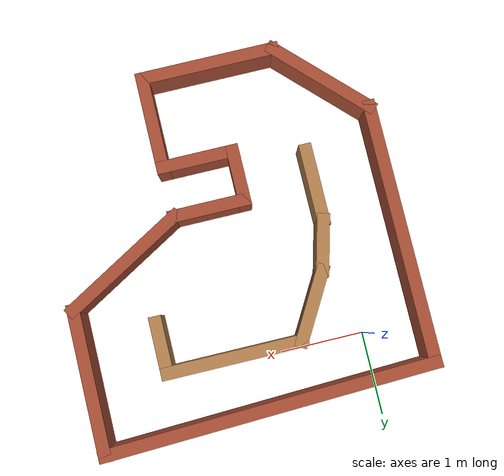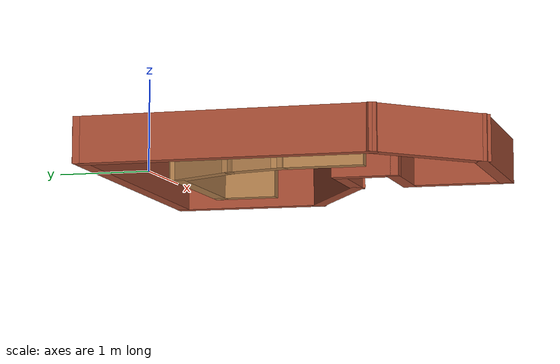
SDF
<?xml version='1.0'?>
<sdf version='1.7'>
  <model name='custom_world2'>
    <pose>1.28842 -1.45908 0 0 -0 0</pose>
    <link name='Wall_0'>
      <collision name='Wall_0_Collision'>
        <geometry>
          <box>
            <size>3.25 0.15 0.5</size>
          </box>
        </geometry>
        <pose>0 0 0.25 0 -0 0</pose>
      </collision>
      <visual name='Wall_0_Visual'>
        <pose>0 0 0.25 0 -0 0</pose>
        <geometry>
          <box>
            <size>3.25 0.15 0.5</size>
          </box>
        </geometry>
        <material>
          <script>
            <uri>file://media/materials/scripts/gazebo.material</uri>
            <name>Gazebo/Bricks</name>
          </script>
          <ambient>1 1 1 1</ambient>
        </material>
        <meta>
          <layer>0</layer>
        </meta>
      </visual>
      <pose>-1.96842 0.419076 0 0 -0 1.5708</pose>
    </link>
    <link name='Wall_12'>
      <collision name='Wall_12_Collision'>
        <geometry>
          <box>
            <size>4.09292 0.15 0.5</size>
          </box>
        </geometry>
        <pose>0 0 0.25 0 -0 0</pose>
      </collision>
      <visual name='Wall_12_Visual'>
        <pose>0 0 0.25 0 -0 0</pose>
        <geometry>
          <box>
            <size>4.09292 0.15 0.5</size>
          </box>
        </geometry>
        <material>
          <script>
            <uri>file://media/materials/scripts/gazebo.material</uri>
            <name>Gazebo/Bricks</name>
          </script>
          <ambient>1 1 1 1</ambient>
        </material>
        <meta>
          <layer>0</layer>
        </meta>
      </visual>
      <pose>0.001583 2.04157 0 0 -0 -3.10481</pose>
    </link>
    <link name='Wall_14'>
      <collision name='Wall_14_Collision'>
        <geometry>
          <box>
            <size>1.85 0.15 0.5</size>
          </box>
        </geometry>
        <pose>0 0 0.25 0 -0 0</pose>
      </collision>
      <visual name='Wall_14_Visual'>
        <pose>0 0 0.25 0 -0 0</pose>
        <geometry>
          <box>
            <size>1.85 0.15 0.5</size>
          </box>
        </geometry>
        <material>
          <script>
            <uri>file://media/materials/scripts/gazebo.material</uri>
            <name>Gazebo/Bricks</name>
          </script>
          <ambient>1 1 1 1</ambient>
        </material>
        <meta>
          <layer>0</layer>
        </meta>
      </visual>
      <pose>1.97158 1.26408 0 0 -0 -1.5708</pose>
    </link>
    <link name='Wall_16'>
      <collision name='Wall_16_Collision'>
        <geometry>
          <box>
            <size>0.75 0.15 0.5</size>
          </box>
        </geometry>
        <pose>0 0 0.25 0 -0 0</pose>
      </collision>
      <visual name='Wall_16_Visual'>
        <pose>0 0 0.25 0 -0 0</pose>
        <geometry>
          <box>
            <size>0.75 0.15 0.5</size>
          </box>
        </geometry>
        <material>
          <script>
            <uri>file://media/materials/scripts/gazebo.material</uri>
            <name>Gazebo/Wood</name>
          </script>
          <ambient>1 1 1 1</ambient>
        </material>
        <meta>
          <layer>0</layer>
        </meta>
      </visual>
      <pose>1.07058 1.07308 0 0 -0 1.5708</pose>
    </link>
    <link name='Wall_17'>
      <collision name='Wall_17_Collision'>
        <geometry>
          <box>
            <size>1.75 0.15 0.5</size>
          </box>
        </geometry>
        <pose>0 0 0.25 0 -0 0</pose>
      </collision>
      <visual name='Wall_17_Visual'>
        <pose>0 0 0.25 0 -0 0</pose>
        <geometry>
          <box>
            <size>1.75 0.15 0.5</size>
          </box>
        </geometry>
        <material>
          <script>
            <uri>file://media/materials/scripts/gazebo.material</uri>
            <name>Gazebo/Wood</name>
          </script>
          <ambient>1 1 1 1</ambient>
        </material>
        <meta>
          <layer>0</layer>
        </meta>
      </visual>
      <pose>0.270583 1.37308 0 0 -0 3.14159</pose>
    </link>
    <link name='Wall_18'>
      <collision name='Wall_18_Collision'>
        <geometry>
          <box>
            <size>1 0.15 0.5</size>
          </box>
        </geometry>
        <pose>0 0 0.25 0 -0 0</pose>
      </collision>
      <visual name='Wall_18_Visual'>
        <pose>0 0 0.25 0 -0 0</pose>
        <geometry>
          <box>
            <size>1 0.15 0.5</size>
          </box>
        </geometry>
        <material>
          <script>
            <uri>file://media/materials/scripts/gazebo.material</uri>
            <name>Gazebo/Wood</name>
          </script>
          <ambient>1 1 1 1</ambient>
        </material>
        <meta>
          <layer>0</layer>
        </meta>
      </visual>
      <pose>-0.741917 1.00508 0 0 -0 -2.09447</pose>
    </link>
    <link name='Wall_19'>
      <collision name='Wall_19_Collision'>
        <geometry>
          <box>
            <size>0.75 0.15 0.5</size>
          </box>
        </geometry>
        <pose>0 0 0.25 0 -0 0</pose>
      </collision>
      <visual name='Wall_19_Visual'>
        <pose>0 0 0.25 0 -0 0</pose>
        <geometry>
          <box>
            <size>0.75 0.15 0.5</size>
          </box>
        </geometry>
        <material>
          <script>
            <uri>file://media/materials/scripts/gazebo.material</uri>
            <name>Gazebo/Wood</name>
          </script>
          <ambient>1 1 1 1</ambient>
        </material>
        <meta>
          <layer>0</layer>
        </meta>
      </visual>
      <pose>-1.03192 0.347076 0 0 -0 -1.83194</pose>
    </link>
    <link name='Wall_2'>
      <collision name='Wall_2_Collision'>
        <geometry>
          <box>
            <size>1.5 0.15 0.5</size>
          </box>
        </geometry>
        <pose>0 0 0.25 0 -0 0</pose>
      </collision>
      <visual name='Wall_2_Visual'>
        <pose>0 0 0.25 0 -0 0</pose>
        <geometry>
          <box>
            <size>1.5 0.15 0.5</size>
          </box>
        </geometry>
        <material>
          <script>
            <uri>file://media/materials/scripts/gazebo.material</uri>
            <name>Gazebo/Bricks</name>
          </script>
          <ambient>1 1 1 1</ambient>
        </material>
        <meta>
          <layer>0</layer>
        </meta>
      </visual>
      <pose>-1.49092 -1.60842 0 0 -0 -0.785398</pose>
    </link>
    <link name='Wall_20'>
      <collision name='Wall_20_Collision'>
        <geometry>
          <box>
            <size>1 0.15 0.5</size>
          </box>
        </geometry>
        <pose>0 0 0.25 0 -0 0</pose>
      </collision>
      <visual name='Wall_20_Visual'>
        <pose>0 0 0.25 0 -0 0</pose>
        <geometry>
          <box>
            <size>1 0.15 0.5</size>
          </box>
        </geometry>
        <material>
          <script>
            <uri>file://media/materials/scripts/gazebo.material</uri>
            <name>Gazebo/Wood</name>
          </script>
          <ambient>1 1 1 1</ambient>
        </material>
        <meta>
          <layer>0</layer>
        </meta>
      </visual>
      <pose>-1.10942 -0.367925 0 0 -0 -1.5708</pose>
    </link>
    <link name='Wall_4'>
      <collision name='Wall_4_Collision'>
        <geometry>
          <box>
            <size>1.75 0.15 0.5</size>
          </box>
        </geometry>
        <pose>0 0 0.25 0 -0 0</pose>
      </collision>
      <visual name='Wall_4_Visual'>
        <pose>0 0 0.25 0 -0 0</pose>
        <geometry>
          <box>
            <size>1.75 0.15 0.5</size>
          </box>
        </geometry>
        <material>
          <script>
            <uri>file://media/materials/scripts/gazebo.material</uri>
            <name>Gazebo/Bricks</name>
          </script>
          <ambient>1 1 1 1</ambient>
        </material>
        <meta>
          <layer>0</layer>
        </meta>
      </visual>
      <pose>-0.213417 -2.08593 0 0 -0 0</pose>
    </link>
    <link name='Wall_5'>
      <collision name='Wall_5_Collision'>
        <geometry>
          <box>
            <size>1.25 0.15 0.5</size>
          </box>
        </geometry>
        <pose>0 0 0.25 0 -0 0</pose>
      </collision>
      <visual name='Wall_5_Visual'>
        <pose>0 0 0.25 0 -0 0</pose>
        <geometry>
          <box>
            <size>1.25 0.15 0.5</size>
          </box>
        </geometry>
        <material>
          <script>
            <uri>file://media/materials/scripts/gazebo.material</uri>
            <name>Gazebo/Bricks</name>
          </script>
          <ambient>1 1 1 1</ambient>
        </material>
        <meta>
          <layer>0</layer>
        </meta>
      </visual>
      <pose>0.586583 -1.53592 0 0 -0 1.5708</pose>
    </link>
    <link name='Wall_6'>
      <collision name='Wall_6_Collision'>
        <geometry>
          <box>
            <size>1 0.15 0.5</size>
          </box>
        </geometry>
        <pose>0 0 0.25 0 -0 0</pose>
      </collision>
      <visual name='Wall_6_Visual'>
        <pose>0 0 0.25 0 -0 0</pose>
        <geometry>
          <box>
            <size>1 0.15 0.5</size>
          </box>
        </geometry>
        <material>
          <script>
            <uri>file://media/materials/scripts/gazebo.material</uri>
            <name>Gazebo/Bricks</name>
          </script>
          <ambient>1 1 1 1</ambient>
        </material>
        <meta>
          <layer>0</layer>
        </meta>
      </visual>
      <pose>0.161583 -0.985924 0 0 -0 3.14159</pose>
    </link>
    <link name='Wall_7'>
      <collision name='Wall_7_Collision'>
        <geometry>
          <box>
            <size>0.75 0.15 0.5</size>
          </box>
        </geometry>
        <pose>0 0 0.25 0 -0 0</pose>
      </collision>
      <visual name='Wall_7_Visual'>
        <pose>0 0 0.25 0 -0 0</pose>
        <geometry>
          <box>
            <size>0.75 0.15 0.5</size>
          </box>
        </geometry>
        <material>
          <script>
            <uri>file://media/materials/scripts/gazebo.material</uri>
            <name>Gazebo/Bricks</name>
          </script>
          <ambient>1 1 1 1</ambient>
        </material>
        <meta>
          <layer>0</layer>
        </meta>
      </visual>
      <pose>-0.263417 -0.685924 0 0 -0 1.5708</pose>
    </link>
    <link name='Wall_8'>
      <collision name='Wall_8_Collision'>
        <geometry>
          <box>
            <size>1 0.15 0.5</size>
          </box>
        </geometry>
        <pose>0 0 0.25 0 -0 0</pose>
      </collision>
      <visual name='Wall_8_Visual'>
        <pose>0 0 0.25 0 -0 0</pose>
        <geometry>
          <box>
            <size>1 0.15 0.5</size>
          </box>
        </geometry>
        <material>
          <script>
            <uri>file://media/materials/scripts/gazebo.material</uri>
            <name>Gazebo/Bricks</name>
          </script>
          <ambient>1 1 1 1</ambient>
        </material>
        <meta>
          <layer>0</layer>
        </meta>
      </visual>
      <pose>0.161583 -0.385925 0 0 -0 0</pose>
    </link>
    <link name='Wall_9'>
      <collision name='Wall_9_Collision'>
        <geometry>
          <box>
            <size>1.75 0.15 0.5</size>
          </box>
        </geometry>
        <pose>0 0 0.25 0 -0 0</pose>
      </collision>
      <visual name='Wall_9_Visual'>
        <pose>0 0 0.25 0 -0 0</pose>
        <geometry>
          <box>
            <size>1.75 0.15 0.5</size>
          </box>
        </geometry>
        <material>
          <script>
            <uri>file://media/materials/scripts/gazebo.material</uri>
            <name>Gazebo/Bricks</name>
          </script>
          <ambient>1 1 1 1</ambient>
        </material>
        <meta>
          <layer>0</layer>
        </meta>
      </visual>
      <pose>1.27908 0.014075 0 0 -0 0.523799</pose>
    </link>
    <static>1</static>
  </model>
</sdf>
